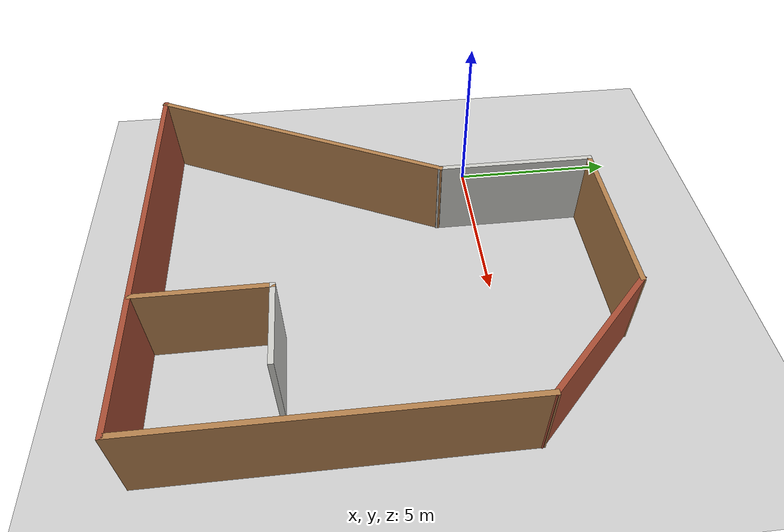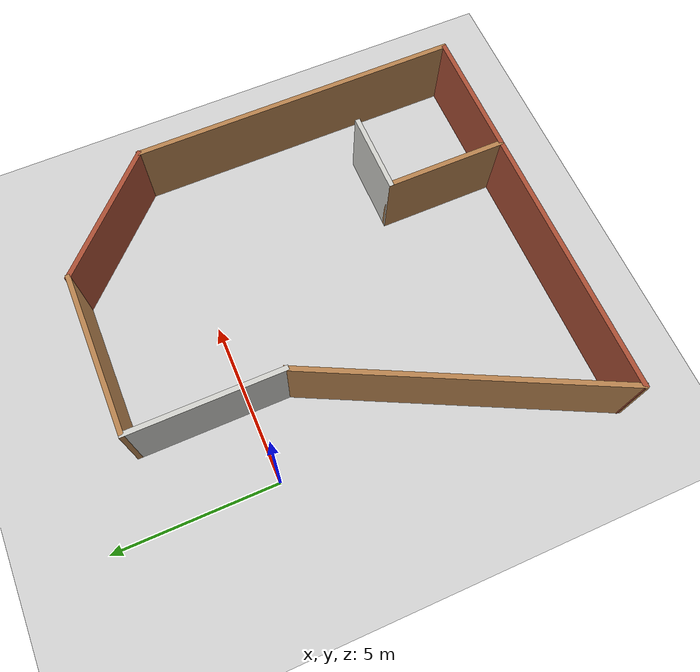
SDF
<sdf version="1.6">
 <world name="default">
  <light name="sun" type="directional">
   <pose>0 0 10 0 -0 0</pose>
   <diffuse>0.8 0.8 0.8 1</diffuse>
   <specular>0.2 0.2 0.2 1</specular>
   <attenuation>
    <range>1000</range>
    <constant>0.9</constant>
    <linear>0.01</linear>
    <quadratic>0.001</quadratic>
   </attenuation>
   <direction>-0.5 0.1 -0.9</direction>
  </light>
  <model name="ground_plane">
   <static>1</static>
   <link name="link">
    <collision name="collision">
     <geometry><plane><normal>0 0 1</normal><size>100 100</size></plane></geometry>
     <surface>
      <contact><collide_bitmask>65535</collide_bitmask></contact>
      <friction><ode><mu>100</mu><mu2>50</mu2></ode></friction>
     </surface>
    </collision>
    <visual name="visual">
     <cast_shadows>0</cast_shadows>
     <geometry><plane><normal>0 0 1</normal><size>100 100</size></plane></geometry>
     <material>
      <script><uri>file://media/materials/scripts/gazebo.material</uri><name>Gazebo/Grey</name></script>
     </material>
    </visual>
   </link>
  </model>
  <gravity>0 0 -9.8</gravity>
  <magnetic_field>6e-06 2.3e-05 -4.2e-05</magnetic_field>
  <atmosphere type="adiabatic"/>
  <physics name="default_physics" default="0" type="ode">
   <max_step_size>0.001</max_step_size>
   <real_time_factor>1</real_time_factor>
   <real_time_update_rate>1000</real_time_update_rate>
  </physics>
  <scene><ambient>0.4 0.4 0.4 1</ambient><background>0.7 0.7 0.7 1</background><shadows>1</shadows></scene>
  <audio><device>default</device></audio>
  <spherical_coordinates>
   <surface_model>EARTH_WGS84</surface_model>
   <latitude_deg>0</latitude_deg>
   <longitude_deg>0</longitude_deg>
   <elevation>0</elevation>
   <heading_deg>0</heading_deg>
  </spherical_coordinates>
  <model name="small_world2">
   <pose>4.1629 -3.18914 0 0 -0 0</pose>
   <link name="Wall_10">
    <collision name="Wall_10_Collision">
     <geometry><box><size>3.75 0.15 2.5</size></box></geometry>
     <pose>0 0 1.25 0 -0 0</pose>
    </collision>
    <visual name="Wall_10_Visual">
     <pose>0 0 1.25 0 -0 0</pose>
     <geometry><box><size>3.75 0.15 2.5</size></box></geometry>
     <material>
      <script><uri>file://media/materials/scripts/gazebo.material</uri><name>Gazebo/Wood</name></script>
      <ambient>1 1 1 1</ambient>
     </material>
     <meta><layer>0</layer></meta>
    </visual>
    <pose>2.16307 -4.75351 0 0 -0 1.5708</pose>
   </link>
   <link name="Wall_11">
    <collision name="Wall_11_Collision">
     <geometry><box><size>2.5 0.15 2.5</size></box></geometry>
     <pose>0 0 1.25 0 -0 0</pose>
    </collision>
    <visual name="Wall_11_Visual">
     <pose>0 0 1.25 0 -0 0</pose>
     <geometry><box><size>2.5 0.15 2.5</size></box></geometry>
     <material>
      <script><uri>file://media/materials/scripts/gazebo.material</uri><name>Gazebo/CeilingTiled</name></script>
      <ambient>1 1 1 1</ambient>
     </material>
     <meta><layer>0</layer></meta>
    </visual>
    <pose>3.33807 -2.95351 0 0 -0 0</pose>
   </link>
   <link name="Wall_13">
    <collision name="Wall_13_Collision">
     <geometry><box><size>4.5 0.15 2.5</size></box></geometry>
     <pose>0 0 1.25 0 -0 0</pose>
    </collision>
    <visual name="Wall_13_Visual">
     <pose>0 0 1.25 0 -0 0</pose>
     <geometry><box><size>4.5 0.15 2.5</size></box></geometry>
     <material>
      <script><uri>file://media/materials/scripts/gazebo.material</uri><name>Gazebo/Bricks</name></script>
      <ambient>1 1 1 1</ambient>
     </material>
     <meta><layer>0</layer></meta>
    </visual>
    <pose>4.50914 5.0471 0 0 -0 2.35619</pose>
   </link>
   <link name="Wall_14">
    <collision name="Wall_14_Collision">
     <geometry><box><size>5 0.15 2.5</size></box></geometry>
     <pose>0 0 1.25 0 -0 0</pose>
    </collision>
    <visual name="Wall_14_Visual">
     <pose>0 0 1.25 0 -0 0</pose>
     <geometry><box><size>5 0.15 2.5</size></box></geometry>
     <material>
      <script><uri>file://media/materials/scripts/gazebo.material</uri><name>Gazebo/Wood</name></script>
      <ambient>1 1 1 1</ambient>
     </material>
     <meta><layer>0</layer></meta>
    </visual>
    <pose>0.546182 6.58505 0 0 -0 3.14159</pose>
   </link>
   <link name="Wall_15">
    <collision name="Wall_15_Collision">
     <geometry><box><size>4.75 0.15 2.5</size></box></geometry>
     <pose>0 0 1.25 0 -0 0</pose>
    </collision>
    <visual name="Wall_15_Visual">
     <pose>0 0 1.25 0 -0 0</pose>
     <geometry><box><size>4.75 0.15 2.5</size></box></geometry>
     <material>
      <script><uri>file://media/materials/scripts/gazebo.material</uri><name>Gazebo/CeilingTiled</name></script>
      <ambient>1 1 1 1</ambient>
     </material>
     <meta><layer>0</layer></meta>
    </visual>
    <pose>-1.87882 4.28505 0 0 -0 -1.5708</pose>
   </link>
   <link name="Wall_16">
    <collision name="Wall_16_Collision">
     <geometry><box><size>9.68778 0.15 2.5</size></box></geometry>
     <pose>0 0 1.25 0 -0 0</pose>
    </collision>
    <visual name="Wall_16_Visual">
     <pose>0 0 1.25 0 -0 0</pose>
     <geometry><box><size>9.68778 0.15 2.5</size></box></geometry>
     <material>
      <script><uri>file://media/materials/scripts/gazebo.material</uri><name>Gazebo/Wood</name></script>
      <ambient>1 1 1 1</ambient>
     </material>
     <meta><layer>0</layer></meta>
    </visual>
    <pose>-3.96586 -2.3029 0 0 -0 -2.02377</pose>
   </link>
   <link name="Wall_2">
    <collision name="Wall_2_Collision">
     <geometry><box><size>12.25 0.15 2.5</size></box></geometry>
     <pose>0 0 1.25 0 -0 0</pose>
    </collision>
    <visual name="Wall_2_Visual">
     <pose>0 0 1.25 0 -0 0</pose>
     <geometry><box><size>12.25 0.15 2.5</size></box></geometry>
     <material>
      <script><uri>file://media/materials/scripts/gazebo.material</uri><name>Gazebo/Bricks</name></script>
      <ambient>1 1 1 1</ambient>
     </material>
     <meta><layer>0</layer></meta>
    </visual>
    <pose>-0.002904 -6.59086 0 0 -0 0</pose>
   </link>
   <link name="Wall_8">
    <collision name="Wall_8_Collision">
     <geometry><box><size>10.25 0.15 2.5</size></box></geometry>
     <pose>0 0 1.25 0 -0 0</pose>
    </collision>
    <visual name="Wall_8_Visual">
     <pose>0 0 1.25 0 -0 0</pose>
     <geometry><box><size>10.25 0.15 2.5</size></box></geometry>
     <material>
      <script><uri>file://media/materials/scripts/gazebo.material</uri><name>Gazebo/Wood</name></script>
      <ambient>1 1 1 1</ambient>
     </material>
     <meta><layer>0</layer></meta>
    </visual>
    <pose>6.0471 -1.54086 0 0 -0 1.5708</pose>
   </link>
   <static>1</static>
  </model>
 </world>
</sdf>
